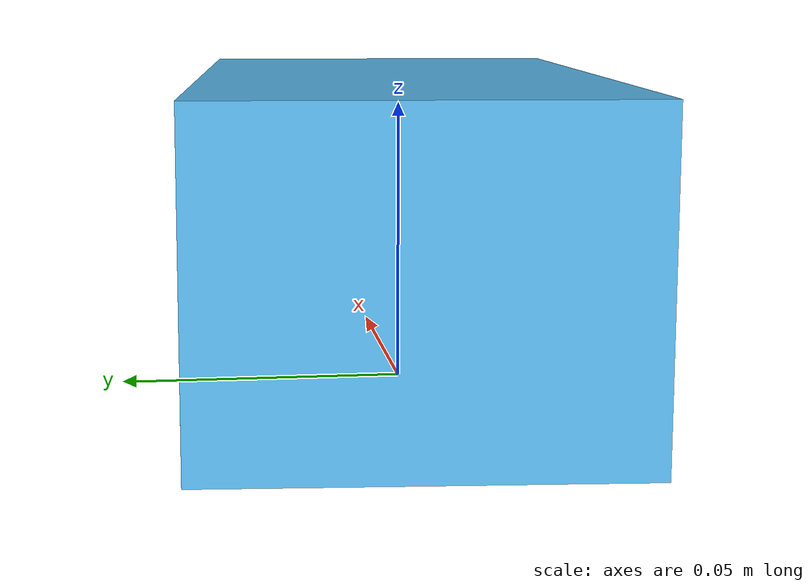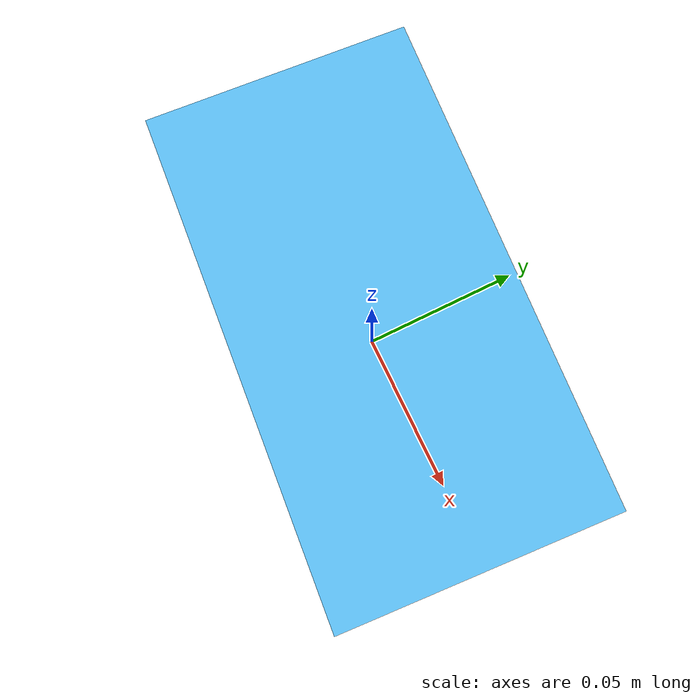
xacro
<?xml version="1.0" ?>
<robot name="body" xmlns:xacro="http://ros.org/wiki/xacro">
  <link name="base_link" />
  <xacro:property name="b_m" value="1.52" />
  <xacro:property name="b_w" value="0.07" />
  <xacro:property name="b_h" value="0.13" />
  <xacro:property name="b_d" value="0.055" />
  <link name="body">
    <visual>
      <geometry>
        <box size="${b_w} ${b_h} ${b_d}" />
      </geometry>
    </visual>
    <collision>
      <geometry>
        <box size="${b_w} ${b_h} ${b_d}" />
      </geometry>
    </collision>
    <inertial>
      <origin xyz="0 0 0" rpy="0 0 0" />
      <mass value="${b_m}" />
      <inertia ixx="${b_m*(b_h*b_h+b_d*b_d)/12}" ixy="0" ixz="0"
               iyx="0" iyy="${b_m*(b_w*b_w+b_d*b_d)/12}" iyz="0"
               izx="0" izy="0" izz="${b_m*(b_w*b_w+b_h*b_h)/12}" />
    </inertial>
  </link>
  <joint name="body_joint" type="fixed">
    <parent link="base_link" />
    <child link="body" />
    <origin xyz="0 0 0.0275" rpy="0 0 1.5" />
  </joint>
</robot>
